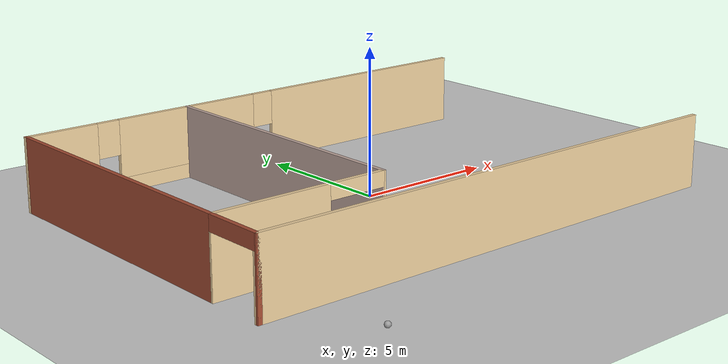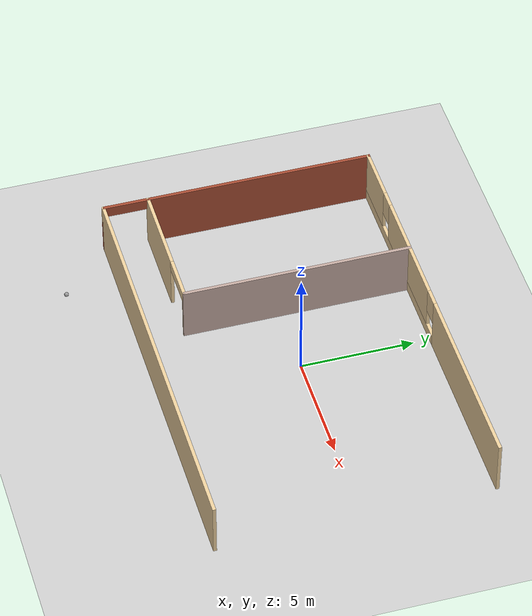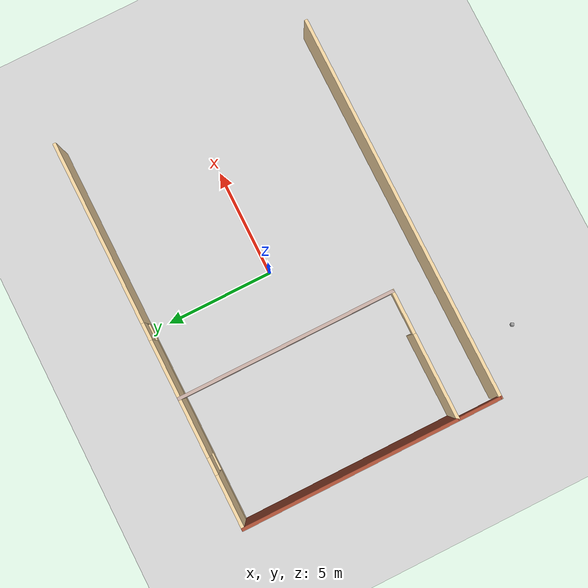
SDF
<sdf version="1.6">
 <world name="default">
  <model name="ground_plane">
   <static>1</static>
   <link name="link">
    <collision name="collision">
     <geometry><plane><normal>0 0 1</normal><size>100 100</size></plane></geometry>
     <surface><friction><ode><mu>100</mu><mu2>50</mu2></ode></friction></surface>
    </collision>
    <visual name="visual">
     <cast_shadows>0</cast_shadows>
     <geometry><plane><normal>0 0 1</normal><size>100 100</size></plane></geometry>
     <material>
      <script><uri>file://media/materials/scripts/gazebo.material</uri><name>Gazebo/Grey</name></script>
     </material>
    </visual>
   </link>
  </model>
  <model name="my_ball">
   <link name="link_0">
    <inertial>
     <mass>1</mass>
     <inertia><ixx>0.1</ixx><ixy>0</ixy><ixz>0</ixz><iyy>0.1</iyy><iyz>0</iyz><izz>0.1</izz></inertia>
    </inertial>
    <visual name="visual">
     <geometry><sphere><radius>0.1</radius></sphere></geometry>
     <material>
      <lighting>1</lighting>
      <script><uri>file://media/materials/scripts/gazebo.material</uri><name>Gazebo/Grey</name></script>
      <ambient>1 1 1 1</ambient>
      <diffuse>1 1 1 1</diffuse>
      <specular>1 1 1 1</specular>
      <emissive>1 1 1 1</emissive>
      <shader type="vertex"><normal_map>__default__</normal_map></shader>
     </material>
    </visual>
    <collision name="collision">
     <geometry><sphere><radius>0.1</radius></sphere></geometry>
     <surface>
      <friction>
       <ode><mu>1</mu><mu2>1</mu2><fdir1>0 0 0</fdir1><slip1>0</slip1><slip2>0</slip2></ode>
       <torsional>
        <coefficient>1</coefficient>
        <patch_radius>0</patch_radius>
        <surface_radius>0</surface_radius>
        <use_patch_radius>1</use_patch_radius>
        <ode><slip>0</slip></ode>
       </torsional>
      </friction>
      <bounce><restitution_coefficient>0</restitution_coefficient><threshold>1e+06</threshold></bounce>
      <contact>
       <collide_without_contact>0</collide_without_contact>
       <collide_without_contact_bitmask>1</collide_without_contact_bitmask>
       <collide_bitmask>1</collide_bitmask>
       <ode>
        <soft_cfm>0</soft_cfm>
        <soft_erp>0.2</soft_erp>
        <kp>1e+13</kp>
        <kd>1</kd>
        <max_vel>0.01</max_vel>
        <min_depth>0</min_depth>
       </ode>
       <bullet>
        <split_impulse>1</split_impulse>
        <split_impulse_penetration_threshold>-0.01</split_impulse_penetration_threshold>
        <soft_cfm>0</soft_cfm>
        <soft_erp>0.2</soft_erp>
        <kp>1e+13</kp>
        <kd>1</kd>
       </bullet>
      </contact>
     </surface>
    </collision>
   </link>
   <static>0</static>
   <pose>-6.84528 -8.53538 0.1 0 -0 0</pose>
  </model>
  <model name="building">
   <link name="Wall_0">
    <pose>0 -6 0 0 -0 0</pose>
    <visual name="Wall_0_Visual">
     <pose>0 0 1.25 0 -0 0</pose>
     <geometry><box><size>18.15 0.15 2.5</size></box></geometry>
     <material>
      <script><uri>file://media/materials/scripts/gazebo.material</uri><name>Gazebo/Grey</name></script>
      <ambient>0.921569 0.807843 0.615686 1</ambient>
      <shader type="pixel"/>
      <diffuse>0.7 0.7 0.7 1</diffuse>
      <specular>0.01 0.01 0.01 1</specular>
      <emissive>0 0 0 1</emissive>
     </material>
     <meta><layer>0</layer></meta>
    </visual>
    <collision name="Wall_0_Collision">
     <pose>0 0 1.25 0 -0 0</pose>
     <geometry><box><size>18.15 0.15 2.5</size></box></geometry>
     <surface>
      <friction>
       <ode><mu>1</mu><mu2>1</mu2><fdir1>0 0 0</fdir1><slip1>0</slip1><slip2>0</slip2></ode>
       <torsional>
        <coefficient>1</coefficient>
        <patch_radius>0</patch_radius>
        <surface_radius>0</surface_radius>
        <use_patch_radius>1</use_patch_radius>
        <ode><slip>0</slip></ode>
       </torsional>
      </friction>
      <bounce><restitution_coefficient>0</restitution_coefficient><threshold>1e+06</threshold></bounce>
      <contact>
       <collide_without_contact>0</collide_without_contact>
       <collide_without_contact_bitmask>1</collide_without_contact_bitmask>
       <collide_bitmask>1</collide_bitmask>
       <ode>
        <soft_cfm>0</soft_cfm>
        <soft_erp>0.2</soft_erp>
        <kp>1e+13</kp>
        <kd>1</kd>
        <max_vel>0.01</max_vel>
        <min_depth>0</min_depth>
       </ode>
       <bullet>
        <split_impulse>1</split_impulse>
        <split_impulse_penetration_threshold>-0.01</split_impulse_penetration_threshold>
        <soft_cfm>0</soft_cfm>
        <soft_erp>0.2</soft_erp>
        <kp>1e+13</kp>
        <kd>1</kd>
       </bullet>
      </contact>
     </surface>
    </collision>
   </link>
   <link name="Wall_14">
    <pose>-6 -4 0 0 -0 3.14159</pose>
    <visual name="Wall_14_Visual_0">
     <pose>-3.0375 0 1.25 0 -0 0</pose>
     <geometry><box><size>0.075 0.15 2.5</size></box></geometry>
     <material>
      <script><uri>file://media/materials/scripts/gazebo.material</uri><name>Gazebo/Grey</name></script>
      <ambient>0.921569 0.807843 0.615686 1</ambient>
      <shader type="pixel"/>
      <diffuse>0.7 0.7 0.7 1</diffuse>
      <specular>0.01 0.01 0.01 1</specular>
      <emissive>0 0 0 1</emissive>
     </material>
     <meta><layer>0</layer></meta>
    </visual>
    <visual name="Wall_14_Visual_2">
     <pose>-2 0 2.25 0 -0 0</pose>
     <geometry><box><size>2 0.15 0.5</size></box></geometry>
     <material>
      <script><uri>file://media/materials/scripts/gazebo.material</uri><name>Gazebo/Grey</name></script>
      <ambient>0.921569 0.807843 0.615686 1</ambient>
      <shader type="pixel"/>
      <diffuse>0.7 0.7 0.7 1</diffuse>
      <specular>0.01 0.01 0.01 1</specular>
      <emissive>0 0 0 1</emissive>
     </material>
     <meta><layer>0</layer></meta>
    </visual>
    <visual name="Wall_14_Visual_1">
     <pose>1.0375 0 1.25 0 -0 0</pose>
     <geometry><box><size>4.075 0.15 2.5</size></box></geometry>
     <material>
      <script><uri>file://media/materials/scripts/gazebo.material</uri><name>Gazebo/Grey</name></script>
      <ambient>0.921569 0.807843 0.615686 1</ambient>
      <shader type="pixel"/>
      <diffuse>0.7 0.7 0.7 1</diffuse>
      <specular>0.01 0.01 0.01 1</specular>
      <emissive>0 0 0 1</emissive>
     </material>
     <meta><layer>0</layer></meta>
    </visual>
    <collision name="Wall_14_Collision_2">
     <pose>-2 0 2.25 0 -0 0</pose>
     <geometry><box><size>2 0.15 0.5</size></box></geometry>
     <surface>
      <friction>
       <ode><mu>1</mu><mu2>1</mu2><fdir1>0 0 0</fdir1><slip1>0</slip1><slip2>0</slip2></ode>
       <torsional>
        <coefficient>1</coefficient>
        <patch_radius>0</patch_radius>
        <surface_radius>0</surface_radius>
        <use_patch_radius>1</use_patch_radius>
        <ode><slip>0</slip></ode>
       </torsional>
      </friction>
      <bounce><restitution_coefficient>0</restitution_coefficient><threshold>1e+06</threshold></bounce>
      <contact>
       <collide_without_contact>0</collide_without_contact>
       <collide_without_contact_bitmask>1</collide_without_contact_bitmask>
       <collide_bitmask>1</collide_bitmask>
       <ode>
        <soft_cfm>0</soft_cfm>
        <soft_erp>0.2</soft_erp>
        <kp>1e+13</kp>
        <kd>1</kd>
        <max_vel>0.01</max_vel>
        <min_depth>0</min_depth>
       </ode>
       <bullet>
        <split_impulse>1</split_impulse>
        <split_impulse_penetration_threshold>-0.01</split_impulse_penetration_threshold>
        <soft_cfm>0</soft_cfm>
        <soft_erp>0.2</soft_erp>
        <kp>1e+13</kp>
        <kd>1</kd>
       </bullet>
      </contact>
     </surface>
    </collision>
    <collision name="Wall_14_Collision_0">
     <pose>-3.0375 0 1.25 0 -0 0</pose>
     <geometry><box><size>0.075 0.15 2.5</size></box></geometry>
     <surface>
      <friction>
       <ode><mu>1</mu><mu2>1</mu2><fdir1>0 0 0</fdir1><slip1>0</slip1><slip2>0</slip2></ode>
       <torsional>
        <coefficient>1</coefficient>
        <patch_radius>0</patch_radius>
        <surface_radius>0</surface_radius>
        <use_patch_radius>1</use_patch_radius>
        <ode><slip>0</slip></ode>
       </torsional>
      </friction>
      <bounce><restitution_coefficient>0</restitution_coefficient><threshold>1e+06</threshold></bounce>
      <contact>
       <collide_without_contact>0</collide_without_contact>
       <collide_without_contact_bitmask>1</collide_without_contact_bitmask>
       <collide_bitmask>1</collide_bitmask>
       <ode>
        <soft_cfm>0</soft_cfm>
        <soft_erp>0.2</soft_erp>
        <kp>1e+13</kp>
        <kd>1</kd>
        <max_vel>0.01</max_vel>
        <min_depth>0</min_depth>
       </ode>
       <bullet>
        <split_impulse>1</split_impulse>
        <split_impulse_penetration_threshold>-0.01</split_impulse_penetration_threshold>
        <soft_cfm>0</soft_cfm>
        <soft_erp>0.2</soft_erp>
        <kp>1e+13</kp>
        <kd>1</kd>
       </bullet>
      </contact>
     </surface>
    </collision>
    <collision name="Wall_14_Collision_1">
     <pose>1.0375 0 1.25 0 -0 0</pose>
     <geometry><box><size>4.075 0.15 2.5</size></box></geometry>
     <surface>
      <friction>
       <ode><mu>1</mu><mu2>1</mu2><fdir1>0 0 0</fdir1><slip1>0</slip1><slip2>0</slip2></ode>
       <torsional>
        <coefficient>1</coefficient>
        <patch_radius>0</patch_radius>
        <surface_radius>0</surface_radius>
        <use_patch_radius>1</use_patch_radius>
        <ode><slip>0</slip></ode>
       </torsional>
      </friction>
      <bounce><restitution_coefficient>0</restitution_coefficient><threshold>1e+06</threshold></bounce>
      <contact>
       <collide_without_contact>0</collide_without_contact>
       <collide_without_contact_bitmask>1</collide_without_contact_bitmask>
       <collide_bitmask>1</collide_bitmask>
       <ode>
        <soft_cfm>0</soft_cfm>
        <soft_erp>0.2</soft_erp>
        <kp>1e+13</kp>
        <kd>1</kd>
        <max_vel>0.01</max_vel>
        <min_depth>0</min_depth>
       </ode>
       <bullet>
        <split_impulse>1</split_impulse>
        <split_impulse_penetration_threshold>-0.01</split_impulse_penetration_threshold>
        <soft_cfm>0</soft_cfm>
        <soft_erp>0.2</soft_erp>
        <kp>1e+13</kp>
        <kd>1</kd>
       </bullet>
      </contact>
     </surface>
    </collision>
   </link>
   <link name="Wall_4">
    <pose>0 6 0 0 -0 3.14159</pose>
    <inertial>
     <mass>1</mass>
     <inertia><ixx>1</ixx><ixy>0</ixy><ixz>0</ixz><iyy>1</iyy><iyz>0</iyz><izz>1</izz></inertia>
    </inertial>
    <visual name="Wall_4_Visual_5">
     <pose>6.1271 0 1.9 0 -0 0</pose>
     <geometry><box><size>0.8 0.15 1.2</size></box></geometry>
     <material>
      <script><uri>file://media/materials/scripts/gazebo.material</uri><name>Gazebo/Grey</name></script>
      <ambient>0.922 0.808 0.616 1</ambient>
      <shader type="pixel"><normal_map>__default__</normal_map></shader>
      <diffuse>0.7 0.7 0.7 1</diffuse>
      <specular>0.01 0.01 0.01 1</specular>
      <emissive>0 0 0 1</emissive>
     </material>
     <meta><layer>0</layer></meta>
    </visual>
    <visual name="Wall_4_Visual_3">
     <pose>7.80105 0 1.5 0 -0 0</pose>
     <geometry><box><size>2.5479 0.15 2</size></box></geometry>
     <material>
      <script><uri>file://media/materials/scripts/gazebo.material</uri><name>Gazebo/Grey</name></script>
      <ambient>0.922 0.808 0.616 1</ambient>
      <shader type="pixel"><normal_map>__default__</normal_map></shader>
      <diffuse>0.7 0.7 0.7 1</diffuse>
      <specular>0.01 0.01 0.01 1</specular>
      <emissive>0 0 0 1</emissive>
     </material>
     <meta><layer>0</layer></meta>
    </visual>
    <visual name="Wall_4_Visual_2">
     <pose>3.0069 0 1.5 0 -0 0</pose>
     <geometry><box><size>5.44041 0.15 2</size></box></geometry>
     <material>
      <script><uri>file://media/materials/scripts/gazebo.material</uri><name>Gazebo/Grey</name></script>
      <ambient>0.922 0.808 0.616 1</ambient>
      <shader type="pixel"><normal_map>__default__</normal_map></shader>
      <diffuse>0.7 0.7 0.7 1</diffuse>
      <specular>0.01 0.01 0.01 1</specular>
      <emissive>0 0 0 1</emissive>
     </material>
     <meta><layer>0</layer></meta>
    </visual>
    <visual name="Wall_4_Visual_0">
     <pose>-4.79415 0 1.25 0 -0 0</pose>
     <geometry><box><size>8.56169 0.15 2.5</size></box></geometry>
     <material>
      <script><uri>file://media/materials/scripts/gazebo.material</uri><name>Gazebo/Grey</name></script>
      <ambient>0.922 0.808 0.616 1</ambient>
      <shader type="pixel"><normal_map>__default__</normal_map></shader>
      <diffuse>0.7 0.7 0.7 1</diffuse>
      <specular>0.01 0.01 0.01 1</specular>
      <emissive>0 0 0 1</emissive>
     </material>
     <meta><layer>0</layer></meta>
    </visual>
    <visual name="Wall_4_Visual_4">
     <pose>-0.113307 0 1.9 0 -0 0</pose>
     <geometry><box><size>0.8 0.15 1.2</size></box></geometry>
     <material>
      <script><uri>file://media/materials/scripts/gazebo.material</uri><name>Gazebo/Grey</name></script>
      <ambient>0.922 0.808 0.616 1</ambient>
      <shader type="pixel"><normal_map>__default__</normal_map></shader>
      <diffuse>0.7 0.7 0.7 1</diffuse>
      <specular>0.01 0.01 0.01 1</specular>
      <emissive>0 0 0 1</emissive>
     </material>
     <meta><layer>0</layer></meta>
    </visual>
    <visual name="Wall_4_Visual_1">
     <pose>4.28085 0 0.25 0 -0 0</pose>
     <geometry><box><size>9.58831 0.15 0.5</size></box></geometry>
     <material>
      <script><uri>file://media/materials/scripts/gazebo.material</uri><name>Gazebo/Grey</name></script>
      <ambient>0.922 0.808 0.616 1</ambient>
      <shader type="pixel"><normal_map>__default__</normal_map></shader>
      <diffuse>0.7 0.7 0.7 1</diffuse>
      <specular>0.01 0.01 0.01 1</specular>
      <emissive>0 0 0 1</emissive>
     </material>
     <meta><layer>0</layer></meta>
    </visual>
    <collision name="Wall_4_Collision_3">
     <pose>7.80105 0 1.5 0 -0 0</pose>
     <geometry><box><size>2.5479 0.15 2</size></box></geometry>
     <surface>
      <friction>
       <ode><mu>1</mu><mu2>1</mu2><fdir1>0 0 0</fdir1><slip1>0</slip1><slip2>0</slip2></ode>
       <torsional>
        <coefficient>1</coefficient>
        <patch_radius>0</patch_radius>
        <surface_radius>0</surface_radius>
        <use_patch_radius>1</use_patch_radius>
        <ode><slip>0</slip></ode>
       </torsional>
      </friction>
      <bounce><restitution_coefficient>0</restitution_coefficient><threshold>1e+06</threshold></bounce>
      <contact>
       <collide_without_contact>0</collide_without_contact>
       <collide_without_contact_bitmask>1</collide_without_contact_bitmask>
       <collide_bitmask>1</collide_bitmask>
       <ode>
        <soft_cfm>0</soft_cfm>
        <soft_erp>0.2</soft_erp>
        <kp>1e+13</kp>
        <kd>1</kd>
        <max_vel>0.01</max_vel>
        <min_depth>0</min_depth>
       </ode>
       <bullet>
        <split_impulse>1</split_impulse>
        <split_impulse_penetration_threshold>-0.01</split_impulse_penetration_threshold>
        <soft_cfm>0</soft_cfm>
        <soft_erp>0.2</soft_erp>
        <kp>1e+13</kp>
        <kd>1</kd>
       </bullet>
      </contact>
     </surface>
    </collision>
    <collision name="Wall_4_Collision_4">
     <pose>-0.113307 0 1.9 0 -0 0</pose>
     <geometry><box><size>0.8 0.15 1.2</size></box></geometry>
     <surface>
      <friction>
       <ode><mu>1</mu><mu2>1</mu2><fdir1>0 0 0</fdir1><slip1>0</slip1><slip2>0</slip2></ode>
       <torsional>
        <coefficient>1</coefficient>
        <patch_radius>0</patch_radius>
        <surface_radius>0</surface_radius>
        <use_patch_radius>1</use_patch_radius>
        <ode><slip>0</slip></ode>
       </torsional>
      </friction>
      <bounce><restitution_coefficient>0</restitution_coefficient><threshold>1e+06</threshold></bounce>
      <contact>
       <collide_without_contact>0</collide_without_contact>
       <collide_without_contact_bitmask>1</collide_without_contact_bitmask>
       <collide_bitmask>1</collide_bitmask>
       <ode>
        <soft_cfm>0</soft_cfm>
        <soft_erp>0.2</soft_erp>
        <kp>1e+13</kp>
        <kd>1</kd>
        <max_vel>0.01</max_vel>
        <min_depth>0</min_depth>
       </ode>
       <bullet>
        <split_impulse>1</split_impulse>
        <split_impulse_penetration_threshold>-0.01</split_impulse_penetration_threshold>
        <soft_cfm>0</soft_cfm>
        <soft_erp>0.2</soft_erp>
        <kp>1e+13</kp>
        <kd>1</kd>
       </bullet>
      </contact>
     </surface>
    </collision>
    <collision name="Wall_4_Collision_1">
     <pose>4.28085 0 0.25 0 -0 0</pose>
     <geometry><box><size>9.58831 0.15 0.5</size></box></geometry>
     <surface>
      <friction>
       <ode><mu>1</mu><mu2>1</mu2><fdir1>0 0 0</fdir1><slip1>0</slip1><slip2>0</slip2></ode>
       <torsional>
        <coefficient>1</coefficient>
        <patch_radius>0</patch_radius>
        <surface_radius>0</surface_radius>
        <use_patch_radius>1</use_patch_radius>
        <ode><slip>0</slip></ode>
       </torsional>
      </friction>
      <bounce><restitution_coefficient>0</restitution_coefficient><threshold>1e+06</threshold></bounce>
      <contact>
       <collide_without_contact>0</collide_without_contact>
       <collide_without_contact_bitmask>1</collide_without_contact_bitmask>
       <collide_bitmask>1</collide_bitmask>
       <ode>
        <soft_cfm>0</soft_cfm>
        <soft_erp>0.2</soft_erp>
        <kp>1e+13</kp>
        <kd>1</kd>
        <max_vel>0.01</max_vel>
        <min_depth>0</min_depth>
       </ode>
       <bullet>
        <split_impulse>1</split_impulse>
        <split_impulse_penetration_threshold>-0.01</split_impulse_penetration_threshold>
        <soft_cfm>0</soft_cfm>
        <soft_erp>0.2</soft_erp>
        <kp>1e+13</kp>
        <kd>1</kd>
       </bullet>
      </contact>
     </surface>
    </collision>
    <collision name="Wall_4_Collision_2">
     <pose>3.0069 0 1.5 0 -0 0</pose>
     <geometry><box><size>5.44041 0.15 2</size></box></geometry>
     <surface>
      <friction>
       <ode><mu>1</mu><mu2>1</mu2><fdir1>0 0 0</fdir1><slip1>0</slip1><slip2>0</slip2></ode>
       <torsional>
        <coefficient>1</coefficient>
        <patch_radius>0</patch_radius>
        <surface_radius>0</surface_radius>
        <use_patch_radius>1</use_patch_radius>
        <ode><slip>0</slip></ode>
       </torsional>
      </friction>
      <bounce><restitution_coefficient>0</restitution_coefficient><threshold>1e+06</threshold></bounce>
      <contact>
       <collide_without_contact>0</collide_without_contact>
       <collide_without_contact_bitmask>1</collide_without_contact_bitmask>
       <collide_bitmask>1</collide_bitmask>
       <ode>
        <soft_cfm>0</soft_cfm>
        <soft_erp>0.2</soft_erp>
        <kp>1e+13</kp>
        <kd>1</kd>
        <max_vel>0.01</max_vel>
        <min_depth>0</min_depth>
       </ode>
       <bullet>
        <split_impulse>1</split_impulse>
        <split_impulse_penetration_threshold>-0.01</split_impulse_penetration_threshold>
        <soft_cfm>0</soft_cfm>
        <soft_erp>0.2</soft_erp>
        <kp>1e+13</kp>
        <kd>1</kd>
       </bullet>
      </contact>
     </surface>
    </collision>
    <collision name="Wall_4_Collision_5">
     <pose>6.1271 0 1.9 0 -0 0</pose>
     <geometry><box><size>0.8 0.15 1.2</size></box></geometry>
     <surface>
      <friction>
       <ode><mu>1</mu><mu2>1</mu2><fdir1>0 0 0</fdir1><slip1>0</slip1><slip2>0</slip2></ode>
       <torsional>
        <coefficient>1</coefficient>
        <patch_radius>0</patch_radius>
        <surface_radius>0</surface_radius>
        <use_patch_radius>1</use_patch_radius>
        <ode><slip>0</slip></ode>
       </torsional>
      </friction>
      <bounce><restitution_coefficient>0</restitution_coefficient><threshold>1e+06</threshold></bounce>
      <contact>
       <collide_without_contact>0</collide_without_contact>
       <collide_without_contact_bitmask>1</collide_without_contact_bitmask>
       <collide_bitmask>1</collide_bitmask>
       <ode>
        <soft_cfm>0</soft_cfm>
        <soft_erp>0.2</soft_erp>
        <kp>1e+13</kp>
        <kd>1</kd>
        <max_vel>0.01</max_vel>
        <min_depth>0</min_depth>
       </ode>
       <bullet>
        <split_impulse>1</split_impulse>
        <split_impulse_penetration_threshold>-0.01</split_impulse_penetration_threshold>
        <soft_cfm>0</soft_cfm>
        <soft_erp>0.2</soft_erp>
        <kp>1e+13</kp>
        <kd>1</kd>
       </bullet>
      </contact>
     </surface>
    </collision>
    <collision name="Wall_4_Collision_0">
     <pose>-4.79415 0 1.25 0 -0 0</pose>
     <geometry><box><size>8.56169 0.15 2.5</size></box></geometry>
     <surface>
      <friction>
       <ode><mu>1</mu><mu2>1</mu2><fdir1>0 0 0</fdir1><slip1>0</slip1><slip2>0</slip2></ode>
       <torsional>
        <coefficient>1</coefficient>
        <patch_radius>0</patch_radius>
        <surface_radius>0</surface_radius>
        <use_patch_radius>1</use_patch_radius>
        <ode><slip>0</slip></ode>
       </torsional>
      </friction>
      <bounce><restitution_coefficient>0</restitution_coefficient><threshold>1e+06</threshold></bounce>
      <contact>
       <collide_without_contact>0</collide_without_contact>
       <collide_without_contact_bitmask>1</collide_without_contact_bitmask>
       <collide_bitmask>1</collide_bitmask>
       <ode>
        <soft_cfm>0</soft_cfm>
        <soft_erp>0.2</soft_erp>
        <kp>1e+13</kp>
        <kd>1</kd>
        <max_vel>0.01</max_vel>
        <min_depth>0</min_depth>
       </ode>
       <bullet>
        <split_impulse>1</split_impulse>
        <split_impulse_penetration_threshold>-0.01</split_impulse_penetration_threshold>
        <soft_cfm>0</soft_cfm>
        <soft_erp>0.2</soft_erp>
        <kp>1e+13</kp>
        <kd>1</kd>
       </bullet>
      </contact>
     </surface>
    </collision>
   </link>
   <link name="Wall_6">
    <pose>-9 0 0 0 0 -1.5708</pose>
    <visual name="Wall_6_Visual_0">
     <pose>-1.0375 0 1.25 0 -0 0</pose>
     <geometry><box><size>10.075 0.15 2.5</size></box></geometry>
     <material>
      <script><uri>file://media/materials/scripts/gazebo.material</uri><name>Gazebo/Bricks</name></script>
      <ambient>1 1 1 1</ambient>
      <shader type="pixel"/>
      <diffuse>1 1 1 1</diffuse>
      <specular>0.2 0.2 0.2 1</specular>
      <emissive>0 0 0 1</emissive>
     </material>
     <meta><layer>0</layer></meta>
    </visual>
    <visual name="Wall_6_Visual_1">
     <pose>6.0375 0 1.25 0 -0 0</pose>
     <geometry><box><size>0.075 0.15 2.5</size></box></geometry>
     <material>
      <script><uri>file://media/materials/scripts/gazebo.material</uri><name>Gazebo/Bricks</name></script>
      <ambient>1 1 1 1</ambient>
      <shader type="pixel"/>
      <diffuse>1 1 1 1</diffuse>
      <specular>0.2 0.2 0.2 1</specular>
      <emissive>0 0 0 1</emissive>
     </material>
     <meta><layer>0</layer></meta>
    </visual>
    <visual name="Wall_6_Visual_2">
     <pose>5 0 2.25 0 -0 0</pose>
     <geometry><box><size>2 0.15 0.5</size></box></geometry>
     <material>
      <script><uri>file://media/materials/scripts/gazebo.material</uri><name>Gazebo/Bricks</name></script>
      <ambient>1 1 1 1</ambient>
      <shader type="pixel"/>
      <diffuse>1 1 1 1</diffuse>
      <specular>0.2 0.2 0.2 1</specular>
      <emissive>0 0 0 1</emissive>
     </material>
     <meta><layer>0</layer></meta>
    </visual>
    <collision name="Wall_6_Collision_0">
     <pose>-1.0375 0 1.25 0 -0 0</pose>
     <geometry><box><size>10.075 0.15 2.5</size></box></geometry>
     <surface>
      <friction>
       <ode><mu>1</mu><mu2>1</mu2><fdir1>0 0 0</fdir1><slip1>0</slip1><slip2>0</slip2></ode>
       <torsional>
        <coefficient>1</coefficient>
        <patch_radius>0</patch_radius>
        <surface_radius>0</surface_radius>
        <use_patch_radius>1</use_patch_radius>
        <ode><slip>0</slip></ode>
       </torsional>
      </friction>
      <bounce><restitution_coefficient>0</restitution_coefficient><threshold>1e+06</threshold></bounce>
      <contact>
       <collide_without_contact>0</collide_without_contact>
       <collide_without_contact_bitmask>1</collide_without_contact_bitmask>
       <collide_bitmask>1</collide_bitmask>
       <ode>
        <soft_cfm>0</soft_cfm>
        <soft_erp>0.2</soft_erp>
        <kp>1e+13</kp>
        <kd>1</kd>
        <max_vel>0.01</max_vel>
        <min_depth>0</min_depth>
       </ode>
       <bullet>
        <split_impulse>1</split_impulse>
        <split_impulse_penetration_threshold>-0.01</split_impulse_penetration_threshold>
        <soft_cfm>0</soft_cfm>
        <soft_erp>0.2</soft_erp>
        <kp>1e+13</kp>
        <kd>1</kd>
       </bullet>
      </contact>
     </surface>
    </collision>
    <collision name="Wall_6_Collision_1">
     <pose>6.0375 0 1.25 0 -0 0</pose>
     <geometry><box><size>0.075 0.15 2.5</size></box></geometry>
     <surface>
      <friction>
       <ode><mu>1</mu><mu2>1</mu2><fdir1>0 0 0</fdir1><slip1>0</slip1><slip2>0</slip2></ode>
       <torsional>
        <coefficient>1</coefficient>
        <patch_radius>0</patch_radius>
        <surface_radius>0</surface_radius>
        <use_patch_radius>1</use_patch_radius>
        <ode><slip>0</slip></ode>
       </torsional>
      </friction>
      <bounce><restitution_coefficient>0</restitution_coefficient><threshold>1e+06</threshold></bounce>
      <contact>
       <collide_without_contact>0</collide_without_contact>
       <collide_without_contact_bitmask>1</collide_without_contact_bitmask>
       <collide_bitmask>1</collide_bitmask>
       <ode>
        <soft_cfm>0</soft_cfm>
        <soft_erp>0.2</soft_erp>
        <kp>1e+13</kp>
        <kd>1</kd>
        <max_vel>0.01</max_vel>
        <min_depth>0</min_depth>
       </ode>
       <bullet>
        <split_impulse>1</split_impulse>
        <split_impulse_penetration_threshold>-0.01</split_impulse_penetration_threshold>
        <soft_cfm>0</soft_cfm>
        <soft_erp>0.2</soft_erp>
        <kp>1e+13</kp>
        <kd>1</kd>
       </bullet>
      </contact>
     </surface>
    </collision>
    <collision name="Wall_6_Collision_2">
     <pose>5 0 2.25 0 -0 0</pose>
     <geometry><box><size>2 0.15 0.5</size></box></geometry>
     <surface>
      <friction>
       <ode><mu>1</mu><mu2>1</mu2><fdir1>0 0 0</fdir1><slip1>0</slip1><slip2>0</slip2></ode>
       <torsional>
        <coefficient>1</coefficient>
        <patch_radius>0</patch_radius>
        <surface_radius>0</surface_radius>
        <use_patch_radius>1</use_patch_radius>
        <ode><slip>0</slip></ode>
       </torsional>
      </friction>
      <bounce><restitution_coefficient>0</restitution_coefficient><threshold>1e+06</threshold></bounce>
      <contact>
       <collide_without_contact>0</collide_without_contact>
       <collide_without_contact_bitmask>1</collide_without_contact_bitmask>
       <collide_bitmask>1</collide_bitmask>
       <ode>
        <soft_cfm>0</soft_cfm>
        <soft_erp>0.2</soft_erp>
        <kp>1e+13</kp>
        <kd>1</kd>
        <max_vel>0.01</max_vel>
        <min_depth>0</min_depth>
       </ode>
       <bullet>
        <split_impulse>1</split_impulse>
        <split_impulse_penetration_threshold>-0.01</split_impulse_penetration_threshold>
        <soft_cfm>0</soft_cfm>
        <soft_erp>0.2</soft_erp>
        <kp>1e+13</kp>
        <kd>1</kd>
       </bullet>
      </contact>
     </surface>
    </collision>
   </link>
   <link name="Wall_8">
    <pose>-3 1 0 0 -0 1.5708</pose>
    <visual name="Wall_8_Visual">
     <pose>0 0 1.25 0 -0 0</pose>
     <geometry><box><size>10.15 0.15 2.5</size></box></geometry>
     <material>
      <script><uri>file://media/materials/scripts/gazebo.material</uri><name>Gazebo/Grey</name></script>
      <ambient>0.760784 0.662745 0.627451 1</ambient>
      <shader type="pixel"/>
      <diffuse>0.7 0.7 0.7 1</diffuse>
      <specular>0.01 0.01 0.01 1</specular>
      <emissive>0 0 0 1</emissive>
     </material>
     <meta><layer>0</layer></meta>
    </visual>
    <collision name="Wall_8_Collision">
     <pose>0 0 1.25 0 -0 0</pose>
     <geometry><box><size>10.15 0.15 2.5</size></box></geometry>
     <surface>
      <friction>
       <ode><mu>1</mu><mu2>1</mu2><fdir1>0 0 0</fdir1><slip1>0</slip1><slip2>0</slip2></ode>
       <torsional>
        <coefficient>1</coefficient>
        <patch_radius>0</patch_radius>
        <surface_radius>0</surface_radius>
        <use_patch_radius>1</use_patch_radius>
        <ode><slip>0</slip></ode>
       </torsional>
      </friction>
      <bounce><restitution_coefficient>0</restitution_coefficient><threshold>1e+06</threshold></bounce>
      <contact>
       <collide_without_contact>0</collide_without_contact>
       <collide_without_contact_bitmask>1</collide_without_contact_bitmask>
       <collide_bitmask>1</collide_bitmask>
       <ode>
        <soft_cfm>0</soft_cfm>
        <soft_erp>0.2</soft_erp>
        <kp>1e+13</kp>
        <kd>1</kd>
        <max_vel>0.01</max_vel>
        <min_depth>0</min_depth>
       </ode>
       <bullet>
        <split_impulse>1</split_impulse>
        <split_impulse_penetration_threshold>-0.01</split_impulse_penetration_threshold>
        <soft_cfm>0</soft_cfm>
        <soft_erp>0.2</soft_erp>
        <kp>1e+13</kp>
        <kd>1</kd>
       </bullet>
      </contact>
     </surface>
    </collision>
   </link>
   <static>1</static>
   <pose>-0.188098 -0.21332 0 0 -0 0</pose>
  </model>
 </world>
</sdf>
